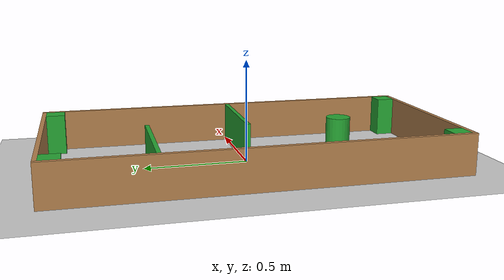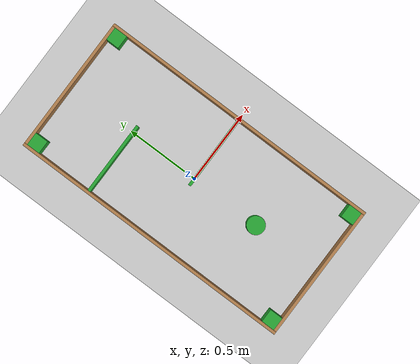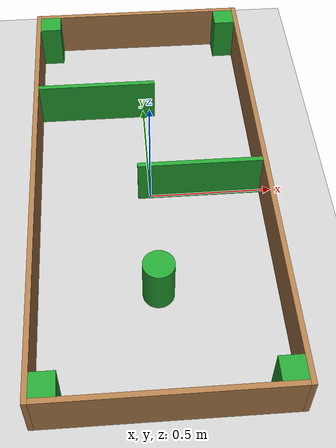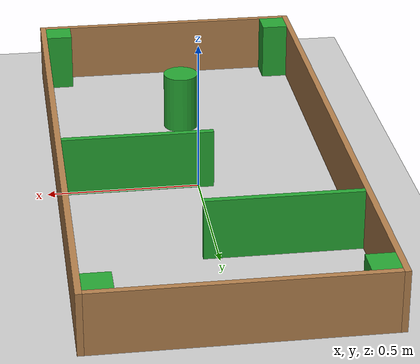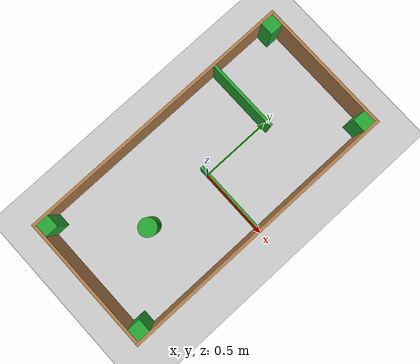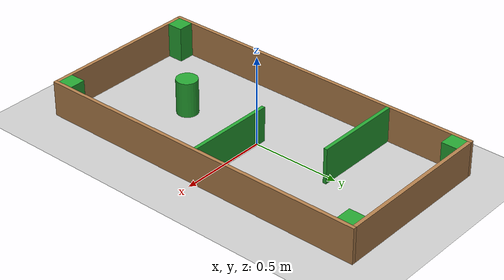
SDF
<?xml version="1.0" ?>
<sdf version="1.6">
  <world name="turtlebot3_rect_maze_rotated">
    <include><uri>model://sun</uri></include>
    <include><uri>model://ground_plane</uri></include>

    <physics type="ode">
      <real_time_update_rate>1000.0</real_time_update_rate>
      <max_step_size>0.001</max_step_size>
    </physics>

    <model name="outer_walls">
      <static>true</static>
      <link name="wall_north">
        <pose>0 0.96 0.1 0 0 0</pose>
        <collision name="c"><geometry><box><size>0.9 0.02 0.2</size></box></geometry></collision>
        <visual name="v"><geometry><box><size>0.9 0.02 0.2</size></box></geometry><material><script><uri>file://media/materials/scripts/gazebo.material</uri><name>Gazebo/Wood</name></script></material></visual>
      </link>
      <link name="wall_south">
        <pose>0 -0.96 0.1 0 0 0</pose>
        <collision name="c"><geometry><box><size>0.9 0.02 0.2</size></box></geometry></collision>
        <visual name="v"><geometry><box><size>0.9 0.02 0.2</size></box></geometry><material><script><uri>file://media/materials/scripts/gazebo.material</uri><name>Gazebo/Wood</name></script></material></visual>
      </link>
      <link name="wall_west">
        <pose>-0.46 0 0.1 0 0 0</pose>
        <collision name="c"><geometry><box><size>0.02 1.94 0.2</size></box></geometry></collision>
        <visual name="v"><geometry><box><size>0.02 1.94 0.2</size></box></geometry><material><script><uri>file://media/materials/scripts/gazebo.material</uri><name>Gazebo/Wood</name></script></material></visual>
      </link>
      <link name="wall_east">
        <pose>0.46 0 0.1 0 0 0</pose>
        <collision name="c"><geometry><box><size>0.02 1.94 0.2</size></box></geometry></collision>
        <visual name="v"><geometry><box><size>0.02 1.94 0.2</size></box></geometry><material><script><uri>file://media/materials/scripts/gazebo.material</uri><name>Gazebo/Wood</name></script></material></visual>
      </link>
    </model>

    <model name="inner_walls">
      <static>true</static>
      <link name="inner_wall_1">
        <pose>-0.20 0.475 0.1 0 0 0</pose>
        <collision name="c"><geometry><box><size>0.5 0.02 0.2</size></box></geometry></collision>
        <visual name="v"><geometry><box><size>0.5 0.02 0.2</size></box></geometry><material><script><uri>file://media/materials/scripts/gazebo.material</uri><name>Gazebo/Green</name></script></material></visual>
      </link>
      <link name="inner_wall_2">
        <pose>0.20 0.0 0.1 0 0 0</pose>
        <collision name="c"><geometry><box><size>0.5 0.02 0.2</size></box></geometry></collision>
        <visual name="v"><geometry><box><size>0.5 0.02 0.2</size></box></geometry><material><script><uri>file://media/materials/scripts/gazebo.material</uri><name>Gazebo/Green</name></script></material></visual>
      </link>
    </model>

    <model name="corner_blocks">
      <static>true</static>
      <link name="corner_nw">
        <pose>-0.405 0.905 0.1 0 0 0</pose>
        <collision name="c"><geometry><box><size>0.09 0.09 0.2</size></box></geometry></collision>
        <visual name="v"><geometry><box><size>0.09 0.09 0.2</size></box></geometry><material><script><uri>file://media/materials/scripts/gazebo.material</uri><name>Gazebo/Green</name></script></material></visual>
      </link>
      <link name="corner_ne">
        <pose>0.405 0.905 0.1 0 0 0</pose>
        <collision name="c"><geometry><box><size>0.09 0.09 0.2</size></box></geometry></collision>
        <visual name="v"><geometry><box><size>0.09 0.09 0.2</size></box></geometry><material><script><uri>file://media/materials/scripts/gazebo.material</uri><name>Gazebo/Green</name></script></material></visual>
      </link>
      <link name="corner_sw">
        <pose>-0.405 -0.905 0.1 0 0 0</pose>
        <collision name="c"><geometry><box><size>0.09 0.09 0.2</size></box></geometry></collision>
        <visual name="v"><geometry><box><size>0.09 0.09 0.2</size></box></geometry><material><script><uri>file://media/materials/scripts/gazebo.material</uri><name>Gazebo/Green</name></script></material></visual>
      </link>
      <link name="corner_se">
        <pose>0.405 -0.905 0.1 0 0 0</pose>
        <collision name="c"><geometry><box><size>0.09 0.09 0.2</size></box></geometry></collision>
        <visual name="v"><geometry><box><size>0.09 0.09 0.2</size></box></geometry><material><script><uri>file://media/materials/scripts/gazebo.material</uri><name>Gazebo/Green</name></script></material></visual>
      </link>
    </model>

    <model name="cylinder_obstacle">
      <static>true</static>
      <pose>0.0 -0.475 0.1 0 0 0</pose>
      <link name="link">
        <collision name="c"><geometry><cylinder><radius>0.06</radius><length>0.2</length></cylinder></geometry></collision>
        <visual name="v"><geometry><cylinder><radius>0.06</radius><length>0.2</length></cylinder></geometry><material><script><uri>file://media/materials/scripts/gazebo.material</uri><name>Gazebo/Green</name></script></material></visual>
      </link>
    </model>

  </world>
</sdf>
